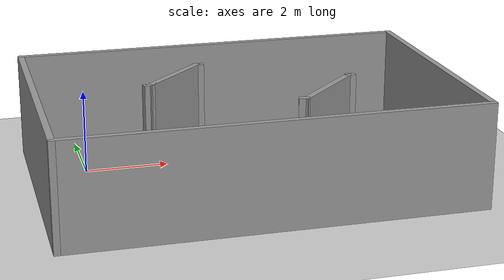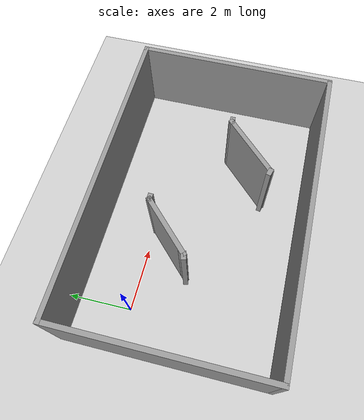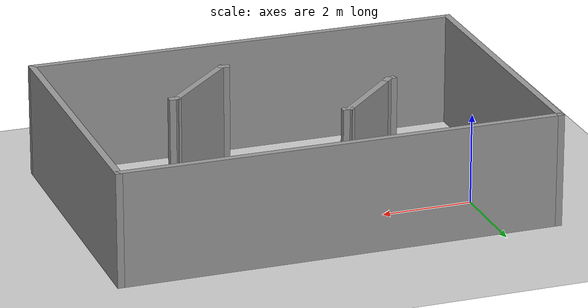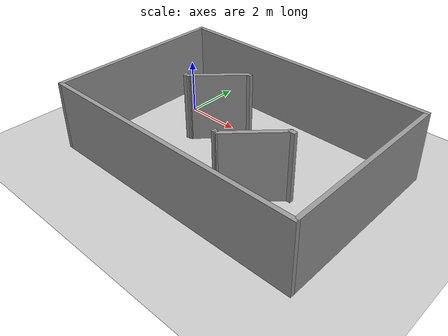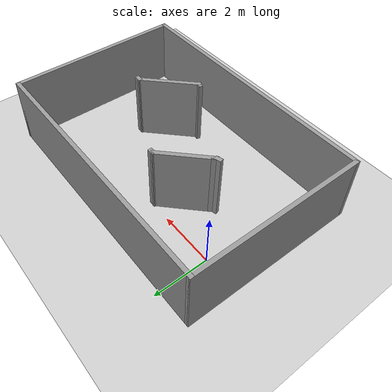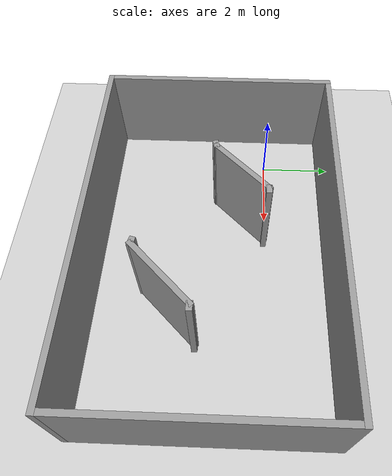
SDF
<sdf version="1.7">
 <world name="default">
  <light name="sun" type="directional">
   <pose>0 0 10 0 -0 0</pose>
   <diffuse>0.8 0.8 0.8 1</diffuse>
   <specular>0.2 0.2 0.2 1</specular>
   <attenuation>
    <range>1000</range>
    <constant>0.9</constant>
    <linear>0.01</linear>
    <quadratic>0.001</quadratic>
   </attenuation>
   <direction>-0.5 0.1 -0.9</direction>
   <spot><inner_angle>0</inner_angle><outer_angle>0</outer_angle><falloff>0</falloff></spot>
  </light>
  <model name="ground_plane">
   <static>1</static>
   <link name="link">
    <collision name="collision">
     <geometry><plane><normal>0 0 1</normal><size>100 100</size></plane></geometry>
     <surface><friction><ode><mu>100</mu><mu2>50</mu2></ode></friction></surface>
    </collision>
    <visual name="visual">
     <cast_shadows>0</cast_shadows>
     <geometry><plane><normal>0 0 1</normal><size>100 100</size></plane></geometry>
     <material>
      <script><uri>file://media/materials/scripts/gazebo.material</uri><name>Gazebo/Grey</name></script>
     </material>
    </visual>
   </link>
  </model>
  <gravity>0 0 -9.8</gravity>
  <magnetic_field>6e-06 2.3e-05 -4.2e-05</magnetic_field>
  <atmosphere type="adiabatic"/>
  <physics type="ode">
   <max_step_size>0.001</max_step_size>
   <real_time_factor>1</real_time_factor>
   <real_time_update_rate>1000</real_time_update_rate>
  </physics>
  <scene><ambient>0.4 0.4 0.4 1</ambient><background>0.7 0.7 0.7 1</background><shadows>1</shadows></scene>
  <audio><device>default</device></audio>
  <spherical_coordinates>
   <surface_model>EARTH_WGS84</surface_model>
   <latitude_deg>0</latitude_deg>
   <longitude_deg>0</longitude_deg>
   <elevation>0</elevation>
   <heading_deg>0</heading_deg>
  </spherical_coordinates>
  <model name="ul24">
   <pose>3.52916 -1.46494 0 0 -0 3.13891</pose>
   <link name="Wall_0">
    <collision name="Wall_0_Collision">
     <geometry><box><size>0.25 0.15 2.5</size></box></geometry>
     <pose>0 0 1.25 0 -0 0</pose>
    </collision>
    <visual name="Wall_0_Visual">
     <pose>0 0 1.25 0 -0 0</pose>
     <geometry><box><size>0.25 0.15 2.5</size></box></geometry>
     <material>
      <script><uri>file://media/materials/scripts/gazebo.material</uri><name>Gazebo/Grey</name></script>
      <ambient>1 1 1 1</ambient>
     </material>
     <meta><layer>0</layer></meta>
    </visual>
    <pose>-2.49618 0.3456 0 0 -0 0</pose>
   </link>
   <link name="Wall_1">
    <collision name="Wall_1_Collision">
     <geometry><box><size>2.25 0.15 2.5</size></box></geometry>
     <pose>0 0 1.25 0 -0 0</pose>
    </collision>
    <visual name="Wall_1_Visual">
     <pose>0 0 1.25 0 -0 0</pose>
     <geometry><box><size>2.25 0.15 2.5</size></box></geometry>
     <material>
      <script><uri>file://media/materials/scripts/gazebo.material</uri><name>Gazebo/Grey</name></script>
      <ambient>1 1 1 1</ambient>
     </material>
     <meta><layer>0</layer></meta>
    </visual>
    <pose>-1.70372 1.08806 0 0 -0 0.785398</pose>
   </link>
   <link name="Wall_10">
    <collision name="Wall_10_Collision">
     <geometry><box><size>9.75 0.15 2.5</size></box></geometry>
     <pose>0 0 1.25 0 -0 0</pose>
    </collision>
    <visual name="Wall_10_Visual">
     <pose>0 0 1.25 0 -0 0</pose>
     <geometry><box><size>9.75 0.15 2.5</size></box></geometry>
     <material>
      <script><uri>file://media/materials/scripts/gazebo.material</uri><name>Gazebo/Grey</name></script>
      <ambient>1 1 1 1</ambient>
     </material>
     <meta><layer>0</layer></meta>
    </visual>
    <pose>-0 -3.175 0 0 -0 0</pose>
   </link>
   <link name="Wall_11">
    <collision name="Wall_11_Collision">
     <geometry><box><size>6.5 0.15 2.5</size></box></geometry>
     <pose>0 0 1.25 0 -0 0</pose>
    </collision>
    <visual name="Wall_11_Visual">
     <pose>0 0 1.25 0 -0 0</pose>
     <geometry><box><size>6.5 0.15 2.5</size></box></geometry>
     <material>
      <script><uri>file://media/materials/scripts/gazebo.material</uri><name>Gazebo/Grey</name></script>
      <ambient>1 1 1 1</ambient>
     </material>
     <meta><layer>0</layer></meta>
    </visual>
    <pose>4.8 -0 0 0 -0 1.5708</pose>
   </link>
   <link name="Wall_12">
    <collision name="Wall_12_Collision">
     <geometry><box><size>9.75 0.15 2.5</size></box></geometry>
     <pose>0 0 1.25 0 -0 0</pose>
    </collision>
    <visual name="Wall_12_Visual">
     <pose>0 0 1.25 0 -0 0</pose>
     <geometry><box><size>9.75 0.15 2.5</size></box></geometry>
     <material>
      <script><uri>file://media/materials/scripts/gazebo.material</uri><name>Gazebo/Grey</name></script>
      <ambient>1 1 1 1</ambient>
     </material>
     <meta><layer>0</layer></meta>
    </visual>
    <pose>-0 3.175 0 0 -0 3.14159</pose>
   </link>
   <link name="Wall_2">
    <collision name="Wall_2_Collision">
     <geometry><box><size>0.25 0.15 2.5</size></box></geometry>
     <pose>0 0 1.25 0 -0 0</pose>
    </collision>
    <visual name="Wall_2_Visual">
     <pose>0 0 1.25 0 -0 0</pose>
     <geometry><box><size>0.25 0.15 2.5</size></box></geometry>
     <material>
      <script><uri>file://media/materials/scripts/gazebo.material</uri><name>Gazebo/Grey</name></script>
      <ambient>1 1 1 1</ambient>
     </material>
     <meta><layer>0</layer></meta>
    </visual>
    <pose>-0.912959 1.81758 0 0 -0 -0.261799</pose>
   </link>
   <link name="Wall_4">
    <collision name="Wall_4_Collision">
     <geometry><box><size>0.25 0.15 2.5</size></box></geometry>
     <pose>0 0 1.25 0 -0 0</pose>
    </collision>
    <visual name="Wall_4_Visual">
     <pose>0 0 1.25 0 -0 0</pose>
     <geometry><box><size>0.25 0.15 2.5</size></box></geometry>
     <material>
      <script><uri>file://media/materials/scripts/gazebo.material</uri><name>Gazebo/Grey</name></script>
      <ambient>1 1 1 1</ambient>
     </material>
     <meta><layer>0</layer></meta>
    </visual>
    <pose>0.744779 -1.4149 0 0 -0 0</pose>
   </link>
   <link name="Wall_5">
    <collision name="Wall_5_Collision">
     <geometry><box><size>2 0.15 2.5</size></box></geometry>
     <pose>0 0 1.25 0 -0 0</pose>
    </collision>
    <visual name="Wall_5_Visual">
     <pose>0 0 1.25 0 -0 0</pose>
     <geometry><box><size>2 0.15 2.5</size></box></geometry>
     <material>
      <script><uri>file://media/materials/scripts/gazebo.material</uri><name>Gazebo/Grey</name></script>
      <ambient>1 1 1 1</ambient>
     </material>
     <meta><layer>0</layer></meta>
    </visual>
    <pose>1.44885 -0.760827 0 0 -0 0.785398</pose>
   </link>
   <link name="Wall_6">
    <collision name="Wall_6_Collision">
     <geometry><box><size>0.25 0.15 2.5</size></box></geometry>
     <pose>0 0 1.25 0 -0 0</pose>
    </collision>
    <visual name="Wall_6_Visual">
     <pose>0 0 1.25 0 -0 0</pose>
     <geometry><box><size>0.25 0.15 2.5</size></box></geometry>
     <material>
      <script><uri>file://media/materials/scripts/gazebo.material</uri><name>Gazebo/Grey</name></script>
      <ambient>1 1 1 1</ambient>
     </material>
     <meta><layer>0</layer></meta>
    </visual>
    <pose>2.13828 -0.071398 0 0 -0 0.785398</pose>
   </link>
   <link name="Wall_7">
    <collision name="Wall_7_Collision">
     <geometry><box><size>0.25 0.15 2.5</size></box></geometry>
     <pose>0 0 1.25 0 -0 0</pose>
    </collision>
    <visual name="Wall_7_Visual">
     <pose>0 0 1.25 0 -0 0</pose>
     <geometry><box><size>0.25 0.15 2.5</size></box></geometry>
     <material>
      <script><uri>file://media/materials/scripts/gazebo.material</uri><name>Gazebo/Grey</name></script>
      <ambient>1 1 1 1</ambient>
     </material>
     <meta><layer>0</layer></meta>
    </visual>
    <pose>2.22193 -0.023102 0 0 -0 0.261799</pose>
   </link>
   <link name="Wall_9">
    <collision name="Wall_9_Collision">
     <geometry><box><size>6.5 0.15 2.5</size></box></geometry>
     <pose>0 0 1.25 0 -0 0</pose>
    </collision>
    <visual name="Wall_9_Visual">
     <pose>0 0 1.25 0 -0 0</pose>
     <geometry><box><size>6.5 0.15 2.5</size></box></geometry>
     <material>
      <script><uri>file://media/materials/scripts/gazebo.material</uri><name>Gazebo/Grey</name></script>
      <ambient>1 1 1 1</ambient>
     </material>
     <meta><layer>0</layer></meta>
    </visual>
    <pose>-4.8 -0 0 0 -0 -1.5708</pose>
   </link>
   <static>1</static>
  </model>
 </world>
</sdf>
